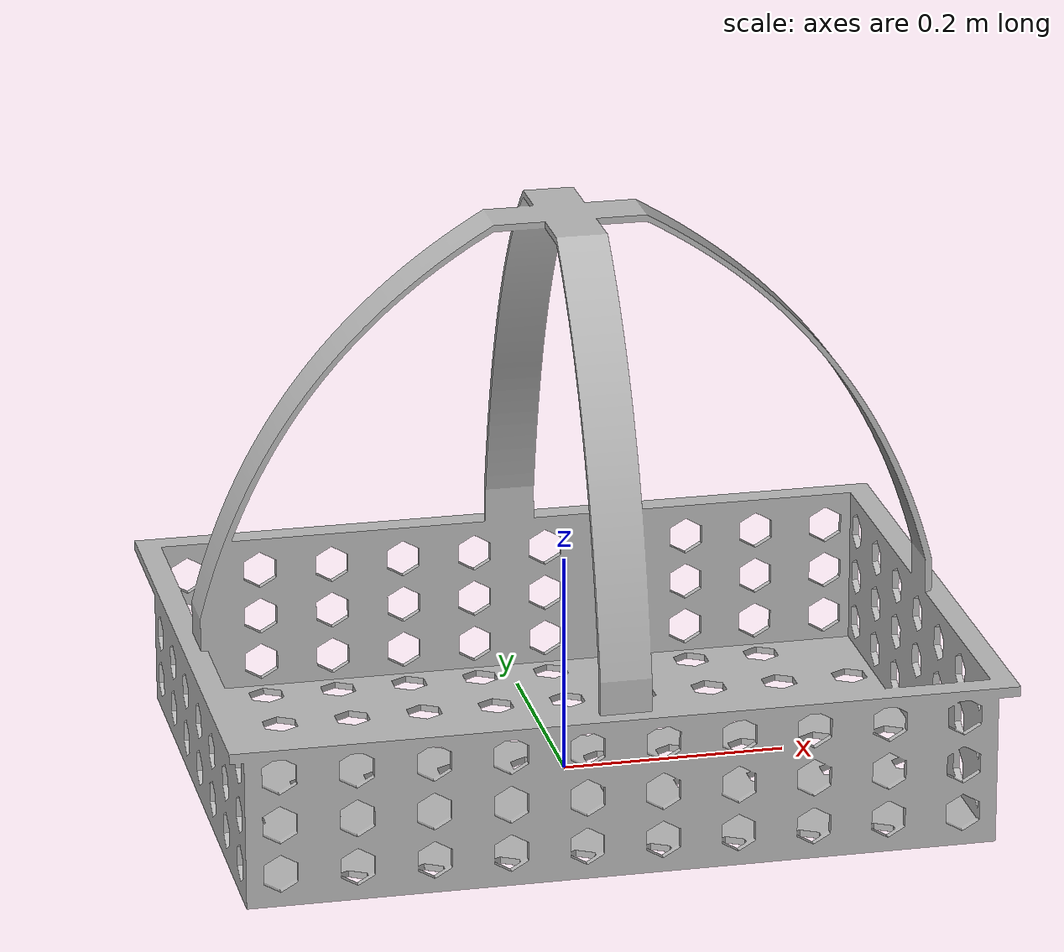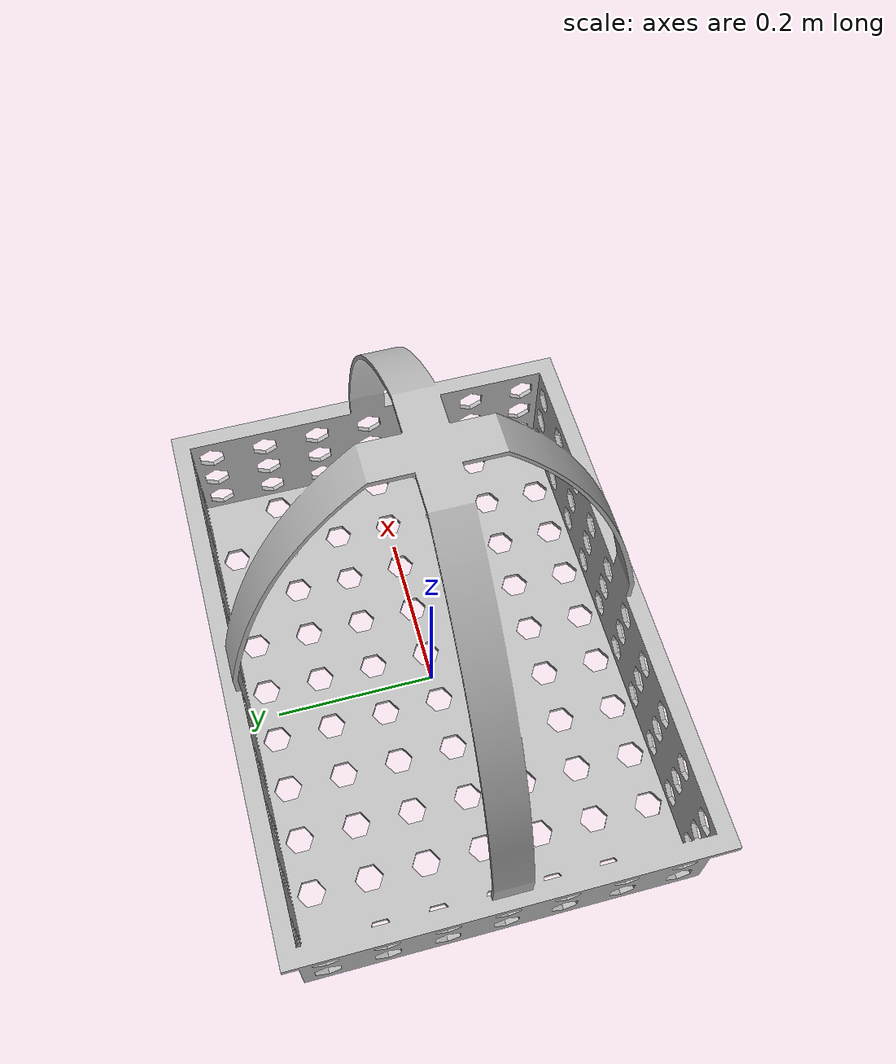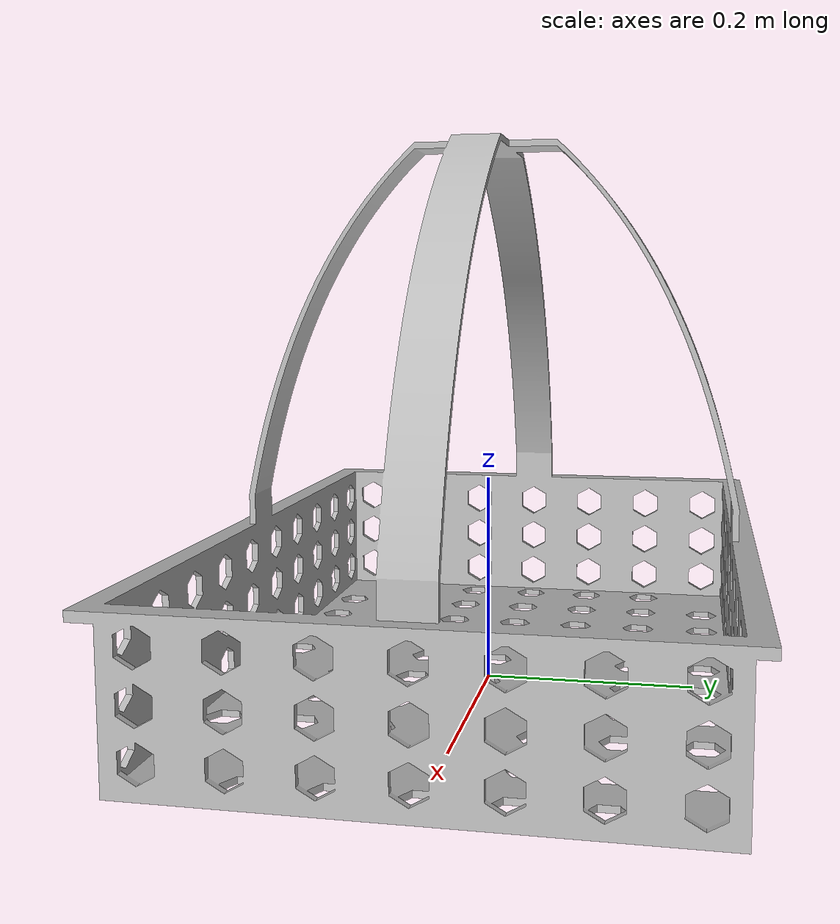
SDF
<?xml version="1.0" ?>
<sdf version="1.7">
  <model name="boxmain">
    <static>true</static> <!-- Set to true if the object should not move -->
    <link name="boxmain_link">
      <!-- Inertial properties are still good to keep even if no collision,
           as they might be used for other purposes, though minimal for a static visual. -->
      <inertial>
        <mass>0.1</mass>
        <inertia>
          <ixx>0.0001</ixx>
          <ixy>0</ixy>
          <ixz>0</ixz>
          <iyy>0.0001</iyy>
          <iyz>0</iyz>
          <izz>0.0001</izz>
        </inertia>
      </inertial>
      <visual name="boxmain_visual">
        <geometry>
          <mesh>
            <!--
              The URI path should be relative to where your model.sdf file is located.
              If the DAE and texture are in the same folder as the SDF, it's just the filename.
            -->
            <uri>model://boxmain/boxmain.dae</uri>
            <scale>0.003 0.003 0.003</scale> <!-- Adjust scale if needed -->
          </mesh>
        </geometry>

      </visual>
    </link>
  </model>
</sdf>
